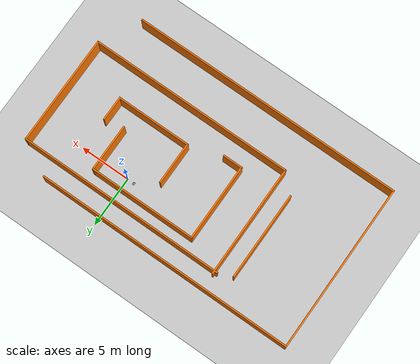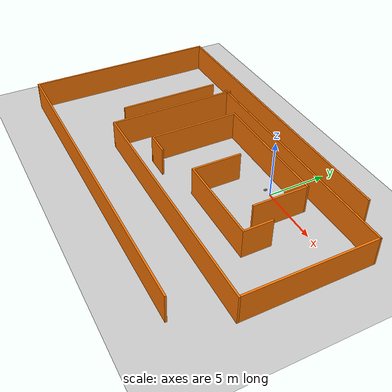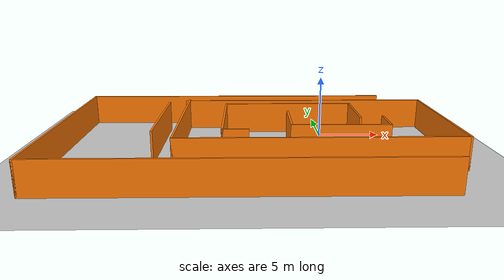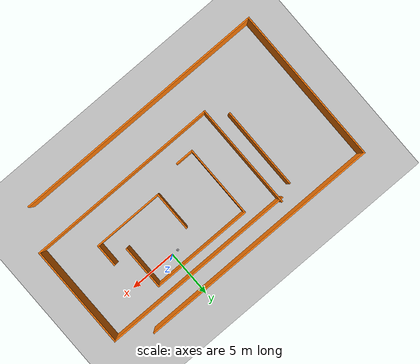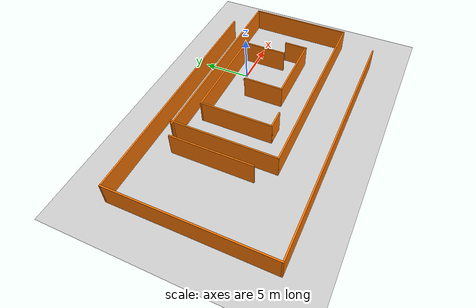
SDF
<sdf version="1.6">
 <world name="default">
  <light name="sun" type="directional">
   <pose>0 0 10 0 -0 0</pose>
   <diffuse>0.8 0.8 0.8 1</diffuse>
   <specular>0.2 0.2 0.2 1</specular>
   <attenuation>
    <range>1000</range>
    <constant>0.9</constant>
    <linear>0.01</linear>
    <quadratic>0.001</quadratic>
   </attenuation>
   <direction>-0.5 0.1 -0.9</direction>
  </light>
  <model name="ground_plane">
   <static>1</static>
   <link name="link">
    <collision name="collision">
     <geometry><plane><normal>0 0 1</normal><size>100 100</size></plane></geometry>
     <surface>
      <contact><collide_bitmask>65535</collide_bitmask></contact>
      <friction><ode><mu>100</mu><mu2>50</mu2></ode></friction>
     </surface>
    </collision>
    <visual name="visual">
     <cast_shadows>0</cast_shadows>
     <geometry><plane><normal>0 0 1</normal><size>100 100</size></plane></geometry>
     <material>
      <script><uri>file://media/materials/scripts/gazebo.material</uri><name>Gazebo/Grey</name></script>
     </material>
    </visual>
   </link>
  </model>
  <gravity>0 0 -9.8</gravity>
  <magnetic_field>6e-06 2.3e-05 -4.2e-05</magnetic_field>
  <atmosphere type="adiabatic"/>
  <physics name="default_physics" default="0" type="ode">
   <max_step_size>0.001</max_step_size>
   <real_time_factor>1</real_time_factor>
   <real_time_update_rate>1000</real_time_update_rate>
  </physics>
  <scene><ambient>0.4 0.4 0.4 1</ambient><background>0.7 0.7 0.7 1</background><shadows>1</shadows></scene>
  <audio><device>default</device></audio>
  <spherical_coordinates>
   <surface_model>EARTH_WGS84</surface_model>
   <latitude_deg>0</latitude_deg>
   <longitude_deg>0</longitude_deg>
   <elevation>0</elevation>
   <heading_deg>0</heading_deg>
  </spherical_coordinates>
  <model name="myrobot">
   <link name="base_link">
    <inertial>
     <pose>0.003878 -0 0.052918 0 -0 0</pose>
     <mass>2.31388</mass>
     <inertia>
      <ixx>0.007906</ixx>
      <ixy>-0</ixy>
      <ixz>-0.000337</ixz>
      <iyy>0.008397</iyy>
      <iyz>-0</iyz>
      <izz>0.014792</izz>
     </inertia>
    </inertial>
    <collision name="base_link_collision">
     <geometry>
      <mesh>
       <scale>0.001 0.001 0.001</scale>
       <uri>/home/ros/r1_wiki_ws/src/myrobot_description/meshes/base_link.stl</uri>
      </mesh>
     </geometry>
     <surface><friction><ode><mu>0.1</mu><mu2>0.1</mu2></ode></friction></surface>
    </collision>
    <visual name="base_link_visual">
     <geometry>
      <mesh>
       <scale>0.001 0.001 0.001</scale>
       <uri>/home/ros/r1_wiki_ws/src/myrobot_description/meshes/base_link.stl</uri>
      </mesh>
     </geometry>
     <material>
      <script><name>Gazebo/Silver</name><uri>file://media/materials/scripts/gazebo.material</uri></script>
     </material>
    </visual>
    <self_collide>1</self_collide>
   </link>
   <link name="right_wheel_1">
    <pose>0 -0.1 0.05 0 -0 0</pose>
    <inertial>
     <pose>-0 -0.0125 0 0 -0 0</pose>
     <mass>0.182605</mass>
     <inertia>
      <ixx>0.000124</ixx>
      <ixy>-0</ixy>
      <ixz>0</ixz>
      <iyy>0.000228</iyy>
      <iyz>0</iyz>
      <izz>0.000124</izz>
     </inertia>
    </inertial>
    <collision name="right_wheel_1_collision">
     <pose>-0 0.1 -0.05 0 -0 0</pose>
     <geometry>
      <mesh>
       <scale>0.001 0.001 0.001</scale>
       <uri>/home/ros/r1_wiki_ws/src/myrobot_description/meshes/right_wheel_1.stl</uri>
      </mesh>
     </geometry>
     <surface><friction><ode><mu>1500</mu><mu2>1500</mu2></ode></friction></surface>
    </collision>
    <visual name="right_wheel_1_visual">
     <pose>-0 0.1 -0.05 0 -0 0</pose>
     <geometry>
      <mesh>
       <scale>0.001 0.001 0.001</scale>
       <uri>/home/ros/r1_wiki_ws/src/myrobot_description/meshes/right_wheel_1.stl</uri>
      </mesh>
     </geometry>
     <material>
      <script><name>Gazebo/Silver</name><uri>file://media/materials/scripts/gazebo.material</uri></script>
     </material>
    </visual>
    <self_collide>1</self_collide>
   </link>
   <joint name="Revolute 1" type="revolute">
    <child>right_wheel_1</child>
    <parent>base_link</parent>
    <axis>
     <xyz>0 1 0</xyz>
     <limit><lower>-1e+16</lower><upper>1e+16</upper></limit>
     <dynamics><spring_reference>0</spring_reference><spring_stiffness>0</spring_stiffness></dynamics>
     <use_parent_model_frame>1</use_parent_model_frame>
    </axis>
   </joint>
   <link name="left_wheel_1">
    <pose>0 0.1 0.05 0 -0 0</pose>
    <inertial>
     <pose>-0 0.0125 0 0 -0 0</pose>
     <mass>0.182605</mass>
     <inertia>
      <ixx>0.000124</ixx>
      <ixy>0</ixy>
      <ixz>0</ixz>
      <iyy>0.000228</iyy>
      <iyz>-0</iyz>
      <izz>0.000124</izz>
     </inertia>
    </inertial>
    <collision name="left_wheel_1_collision">
     <pose>-0 -0.1 -0.05 0 -0 0</pose>
     <geometry>
      <mesh>
       <scale>0.001 0.001 0.001</scale>
       <uri>/home/ros/r1_wiki_ws/src/myrobot_description/meshes/left_wheel_1.stl</uri>
      </mesh>
     </geometry>
     <surface><friction><ode><mu>1500</mu><mu2>1500</mu2></ode></friction></surface>
    </collision>
    <visual name="left_wheel_1_visual">
     <pose>-0 -0.1 -0.05 0 -0 0</pose>
     <geometry>
      <mesh>
       <scale>0.001 0.001 0.001</scale>
       <uri>/home/ros/r1_wiki_ws/src/myrobot_description/meshes/left_wheel_1.stl</uri>
      </mesh>
     </geometry>
     <material>
      <script><name>Gazebo/Silver</name><uri>file://media/materials/scripts/gazebo.material</uri></script>
     </material>
    </visual>
    <self_collide>1</self_collide>
   </link>
   <joint name="Revolute 2" type="revolute">
    <child>left_wheel_1</child>
    <parent>base_link</parent>
    <axis>
     <xyz>0 1 0</xyz>
     <limit><lower>-1e+16</lower><upper>1e+16</upper></limit>
     <dynamics><spring_reference>0</spring_reference><spring_stiffness>0</spring_stiffness></dynamics>
     <use_parent_model_frame>1</use_parent_model_frame>
    </axis>
   </joint>
   <link name="lidar_1">
    <pose>0.05 0 0.11 0 -0 0</pose>
    <inertial>
     <pose>0 0 0.0125 0 -0 0</pose>
     <mass>0.107895</mass>
     <inertia><ixx>4.1e-05</ixx><ixy>0</ixy><ixz>0</ixz><iyy>4.1e-05</iyy><iyz>-0</iyz><izz>7e-05</izz></inertia>
    </inertial>
    <collision name="lidar_1_collision">
     <pose>-0.05 -0 -0.11 0 -0 0</pose>
     <geometry>
      <mesh>
       <scale>0.001 0.001 0.001</scale>
       <uri>/home/ros/r1_wiki_ws/src/myrobot_description/meshes/lidar_1.stl</uri>
      </mesh>
     </geometry>
     <surface><friction><ode><mu>0.2</mu><mu2>0.2</mu2></ode></friction></surface>
    </collision>
    <visual name="lidar_1_visual">
     <pose>-0.05 -0 -0.11 0 -0 0</pose>
     <geometry>
      <mesh>
       <scale>0.001 0.001 0.001</scale>
       <uri>/home/ros/r1_wiki_ws/src/myrobot_description/meshes/lidar_1.stl</uri>
      </mesh>
     </geometry>
     <material>
      <script><name>Gazebo/Silver</name><uri>file://media/materials/scripts/gazebo.material</uri></script>
     </material>
    </visual>
    <self_collide>1</self_collide>
    <sensor name="head_hokuyo_sensor" type="ray">
     <visualize>1</visualize>
     <update_rate>40</update_rate>
     <ray>
      <scan>
       <horizontal>
        <samples>720</samples>
        <resolution>1</resolution>
        <min_angle>-1.5708</min_angle>
        <max_angle>1.5708</max_angle>
       </horizontal>
       <vertical><samples>1</samples><min_angle>0</min_angle><max_angle>0</max_angle></vertical>
      </scan>
      <range><min>0.1</min><max>1</max><resolution>0.01</resolution></range>
      <noise><type>gaussian</type><mean>0</mean><stddev>0.01</stddev></noise>
     </ray>
     <plugin name="gazebo_ros_head_hokuyo_controller" filename="libgazebo_ros_laser.so">
      <topicName>/scan</topicName>
      <frameName>lidar_1</frameName>
      <robotNamespace>/</robotNamespace>
     </plugin>
    </sensor>
   </link>
   <joint name="Revolute 3" type="revolute">
    <child>lidar_1</child>
    <parent>base_link</parent>
    <axis>
     <xyz>0 0 1</xyz>
     <limit><lower>-1e+16</lower><upper>1e+16</upper></limit>
     <dynamics><spring_reference>0</spring_reference><spring_stiffness>0</spring_stiffness></dynamics>
     <use_parent_model_frame>1</use_parent_model_frame>
    </axis>
   </joint>
   <plugin name="control" filename="libgazebo_ros_control.so"><robotNamespace>/</robotNamespace></plugin>
   <static>0</static>
   <plugin name="differential_drive_controller" filename="libgazebo_ros_diff_drive.so">
    <updateRate>100</updateRate>
    <leftJoint>Revolute 2</leftJoint>
    <rightJoint>Revolute 1</rightJoint>
    <wheelSeparation>0.2</wheelSeparation>
    <wheelDiameter>0.1</wheelDiameter>
    <wheelAcceleration>1.0</wheelAcceleration>
    <wheelTorque>50</wheelTorque>
    <commandTopic>cmd_vel</commandTopic>
    <odometryTopic>odom</odometryTopic>
    <odometryFrame>odom</odometryFrame>
    <robotBaseFrame>base_link</robotBaseFrame>
    <odometrySource>1</odometrySource>
    <publishWheelTF>1</publishWheelTF>
    <publishOdom>1</publishOdom>
    <publishWheelJointState>1</publishWheelJointState>
    <legacyMode>0</legacyMode>
    <robotNamespace>/</robotNamespace>
   </plugin>
   <pose>-0.654296 0.000116 -5e-06 -4e-06 5.7e-05 0.002657</pose>
  </model>
  <model name="my_world">
   <pose>-5.46011 -3.99155 0 0 -0 0</pose>
   <link name="Wall_11">
    <collision name="Wall_11_Collision">
     <geometry><box><size>4.25 0.15 2.5</size></box></geometry>
     <pose>0 0 1.25 0 -0 0</pose>
    </collision>
    <visual name="Wall_11_Visual">
     <pose>0 0 1.25 0 -0 0</pose>
     <geometry><box><size>4.25 0.15 2.5</size></box></geometry>
     <material>
      <script><uri>file://media/materials/scripts/gazebo.material</uri><name>Gazebo/Grey</name></script>
      <ambient>0.996078 0.47451 0.0196078 1</ambient>
     </material>
     <meta><layer>0</layer></meta>
    </visual>
    <pose>2.62087 0.759083 0 0 -0 -1.5708</pose>
   </link>
   <link name="Wall_12">
    <collision name="Wall_12_Collision">
     <geometry><box><size>7.5 0.15 2.5</size></box></geometry>
     <pose>0 0 1.25 0 -0 0</pose>
    </collision>
    <visual name="Wall_12_Visual">
     <pose>0 0 1.25 0 -0 0</pose>
     <geometry><box><size>7.5 0.15 2.5</size></box></geometry>
     <material>
      <script><uri>file://media/materials/scripts/gazebo.material</uri><name>Gazebo/Grey</name></script>
      <ambient>0.996078 0.47451 0.0196078 1</ambient>
     </material>
     <meta><layer>0</layer></meta>
    </visual>
    <pose>6.29587 -1.29092 0 0 -0 0</pose>
   </link>
   <link name="Wall_13">
    <collision name="Wall_13_Collision">
     <geometry><box><size>2.5 0.15 2.5</size></box></geometry>
     <pose>0 0 1.25 0 -0 0</pose>
    </collision>
    <visual name="Wall_13_Visual">
     <pose>0 0 1.25 0 -0 0</pose>
     <geometry><box><size>2.5 0.15 2.5</size></box></geometry>
     <material>
      <script><uri>file://media/materials/scripts/gazebo.material</uri><name>Gazebo/Grey</name></script>
      <ambient>0.996078 0.47451 0.0196078 1</ambient>
     </material>
     <meta><layer>0</layer></meta>
    </visual>
    <pose>9.97087 -0.115917 0 0 -0 1.5708</pose>
   </link>
   <link name="Wall_15">
    <collision name="Wall_15_Collision">
     <geometry><box><size>4.75 0.15 2.5</size></box></geometry>
     <pose>0 0 1.25 0 -0 0</pose>
    </collision>
    <visual name="Wall_15_Visual">
     <pose>0 0 1.25 0 -0 0</pose>
     <geometry><box><size>4.75 0.15 2.5</size></box></geometry>
     <material>
      <script><uri>file://media/materials/scripts/gazebo.material</uri><name>Gazebo/Grey</name></script>
      <ambient>0.996078 0.47451 0.0196078 1</ambient>
     </material>
     <meta><layer>0</layer></meta>
    </visual>
    <pose>8.13396 2.96898 0 0 -0 1.5708</pose>
   </link>
   <link name="Wall_16">
    <collision name="Wall_16_Collision">
     <geometry><box><size>10.75 0.15 2.5</size></box></geometry>
     <pose>0 0 1.25 0 -0 0</pose>
    </collision>
    <visual name="Wall_16_Visual">
     <pose>0 0 1.25 0 -0 0</pose>
     <geometry><box><size>10.75 0.15 2.5</size></box></geometry>
     <material>
      <script><uri>file://media/materials/scripts/gazebo.material</uri><name>Gazebo/Grey</name></script>
      <ambient>0.996078 0.47451 0.0196078 1</ambient>
     </material>
     <meta><layer>0</layer></meta>
    </visual>
    <pose>2.83396 5.26898 0 0 -0 3.14159</pose>
   </link>
   <link name="Wall_17">
    <collision name="Wall_17_Collision">
     <geometry><box><size>7.75 0.15 2.5</size></box></geometry>
     <pose>0 0 1.25 0 -0 0</pose>
    </collision>
    <visual name="Wall_17_Visual">
     <pose>0 0 1.25 0 -0 0</pose>
     <geometry><box><size>7.75 0.15 2.5</size></box></geometry>
     <material>
      <script><uri>file://media/materials/scripts/gazebo.material</uri><name>Gazebo/Grey</name></script>
      <ambient>0.996078 0.47451 0.0196078 1</ambient>
     </material>
     <meta><layer>0</layer></meta>
    </visual>
    <pose>-2.46604 1.46898 0 0 -0 -1.5708</pose>
   </link>
   <link name="Wall_18">
    <collision name="Wall_18_Collision">
     <geometry><box><size>2 0.15 2.5</size></box></geometry>
     <pose>0 0 1.25 0 -0 0</pose>
    </collision>
    <visual name="Wall_18_Visual">
     <pose>0 0 1.25 0 -0 0</pose>
     <geometry><box><size>2 0.15 2.5</size></box></geometry>
     <material>
      <script><uri>file://media/materials/scripts/gazebo.material</uri><name>Gazebo/Grey</name></script>
      <ambient>0.996078 0.47451 0.0196078 1</ambient>
     </material>
     <meta><layer>0</layer></meta>
    </visual>
    <pose>-1.54104 -2.33102 0 0 -0 0</pose>
   </link>
   <link name="Wall_22">
    <collision name="Wall_22_Collision">
     <geometry><box><size>11.25 0.15 2.5</size></box></geometry>
     <pose>0 0 1.25 0 -0 0</pose>
    </collision>
    <visual name="Wall_22_Visual">
     <pose>0 0 1.25 0 -0 0</pose>
     <geometry><box><size>11.25 0.15 2.5</size></box></geometry>
     <material>
      <script><uri>file://media/materials/scripts/gazebo.material</uri><name>Gazebo/Grey</name></script>
      <ambient>0.996078 0.47451 0.0196078 1</ambient>
     </material>
     <meta><layer>0</layer></meta>
    </visual>
    <pose>-5.77275 1.19311 0 0 -0 -1.5708</pose>
   </link>
   <link name="Wall_23">
    <collision name="Wall_23_Collision">
     <geometry><box><size>20.5 0.15 2.5</size></box></geometry>
     <pose>0 0 1.25 0 -0 0</pose>
    </collision>
    <visual name="Wall_23_Visual">
     <pose>0 0 1.25 0 -0 0</pose>
     <geometry><box><size>20.5 0.15 2.5</size></box></geometry>
     <material>
      <script><uri>file://media/materials/scripts/gazebo.material</uri><name>Gazebo/Grey</name></script>
      <ambient>0.996078 0.47451 0.0196078 1</ambient>
     </material>
     <meta><layer>0</layer></meta>
    </visual>
    <pose>4.40225 -4.35689 0 0 -0 0</pose>
   </link>
   <link name="Wall_24">
    <collision name="Wall_24_Collision">
     <geometry><box><size>11 0.15 2.5</size></box></geometry>
     <pose>0 0 1.25 0 -0 0</pose>
    </collision>
    <visual name="Wall_24_Visual">
     <pose>0 0 1.25 0 -0 0</pose>
     <geometry><box><size>11 0.15 2.5</size></box></geometry>
     <material>
      <script><uri>file://media/materials/scripts/gazebo.material</uri><name>Gazebo/Grey</name></script>
      <ambient>0.996078 0.47451 0.0196078 1</ambient>
     </material>
     <meta><layer>0</layer></meta>
    </visual>
    <pose>14.5772 1.06811 0 0 -0 1.5708</pose>
   </link>
   <link name="Wall_25">
    <collision name="Wall_25_Collision">
     <geometry><box><size>20.75 0.15 2.5</size></box></geometry>
     <pose>0 0 1.25 0 -0 0</pose>
    </collision>
    <visual name="Wall_25_Visual">
     <pose>0 0 1.25 0 -0 0</pose>
     <geometry><box><size>20.75 0.15 2.5</size></box></geometry>
     <material>
      <script><uri>file://media/materials/scripts/gazebo.material</uri><name>Gazebo/Grey</name></script>
      <ambient>0.996078 0.47451 0.0196078 1</ambient>
     </material>
     <meta><layer>0</layer></meta>
    </visual>
    <pose>4.27725 6.49311 0 0 -0 3.14159</pose>
   </link>
   <link name="Wall_5">
    <collision name="Wall_5_Collision">
     <geometry><box><size>26 0.15 2.5</size></box></geometry>
     <pose>0 0 1.25 0 -0 0</pose>
    </collision>
    <visual name="Wall_5_Visual">
     <pose>0 0 1.25 0 -0 0</pose>
     <geometry><box><size>26 0.15 2.5</size></box></geometry>
     <material>
      <script><uri>file://media/materials/scripts/gazebo.material</uri><name>Gazebo/Grey</name></script>
      <ambient>0.996078 0.47451 0.0196078 1</ambient>
     </material>
     <meta><layer>0</layer></meta>
    </visual>
    <pose>-1.65225 8.3 0 0 -0 3.14159</pose>
   </link>
   <link name="Wall_6">
    <collision name="Wall_6_Collision">
     <geometry><box><size>16.75 0.15 2.5</size></box></geometry>
     <pose>0 0 1.25 0 -0 0</pose>
    </collision>
    <visual name="Wall_6_Visual">
     <pose>0 0 1.25 0 -0 0</pose>
     <geometry><box><size>16.75 0.15 2.5</size></box></geometry>
     <material>
      <script><uri>file://media/materials/scripts/gazebo.material</uri><name>Gazebo/Grey</name></script>
      <ambient>0.996078 0.47451 0.0196078 1</ambient>
     </material>
     <meta><layer>0</layer></meta>
    </visual>
    <pose>-14.5772 -0 0 0 -0 -1.5708</pose>
   </link>
   <link name="Wall_7">
    <collision name="Wall_7_Collision">
     <geometry><box><size>27.25 0.15 2.5</size></box></geometry>
     <pose>0 0 1.25 0 -0 0</pose>
    </collision>
    <visual name="Wall_7_Visual">
     <pose>0 0 1.25 0 -0 0</pose>
     <geometry><box><size>27.25 0.15 2.5</size></box></geometry>
     <material>
      <script><uri>file://media/materials/scripts/gazebo.material</uri><name>Gazebo/Grey</name></script>
      <ambient>0.996078 0.47451 0.0196078 1</ambient>
     </material>
     <meta><layer>0</layer></meta>
    </visual>
    <pose>-1.02725 -8.3 0 0 -0 0</pose>
   </link>
   <link name="Wall_9">
    <collision name="Wall_9_Collision">
     <geometry><box><size>8.75 0.15 2.5</size></box></geometry>
     <pose>0 0 1.25 0 -0 0</pose>
    </collision>
    <visual name="Wall_9_Visual">
     <pose>0 0 1.25 0 -0 0</pose>
     <geometry><box><size>8.75 0.15 2.5</size></box></geometry>
     <material>
      <script><uri>file://media/materials/scripts/gazebo.material</uri><name>Gazebo/Grey</name></script>
      <ambient>0.996078 0.47451 0.0196078 1</ambient>
     </material>
     <meta><layer>0</layer></meta>
    </visual>
    <pose>-7.43647 1.60847 0 0 -0 -1.5708</pose>
   </link>
   <static>1</static>
  </model>
 </world>
</sdf>
